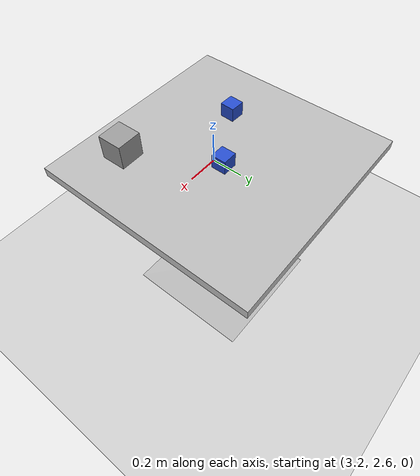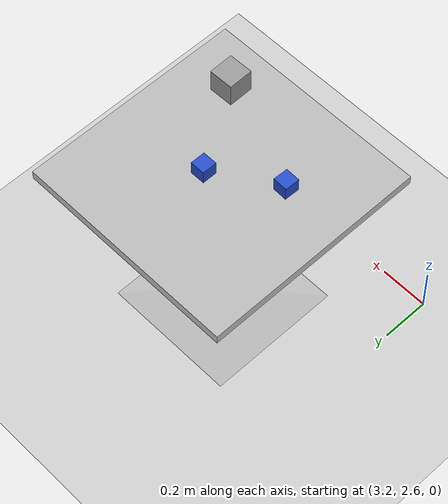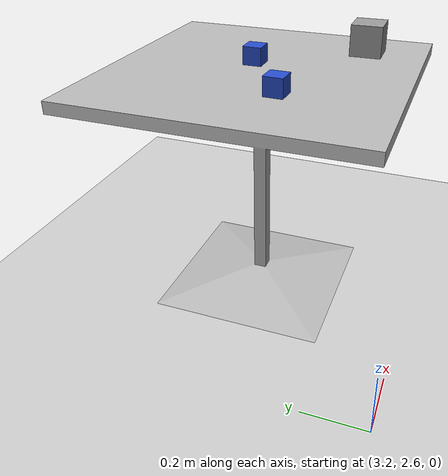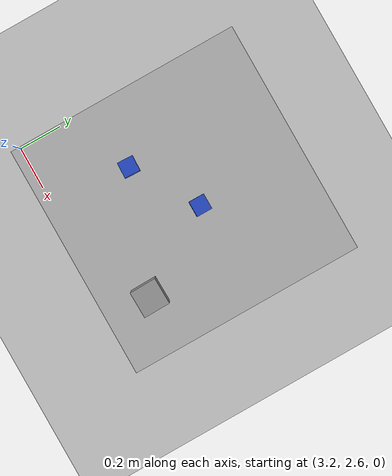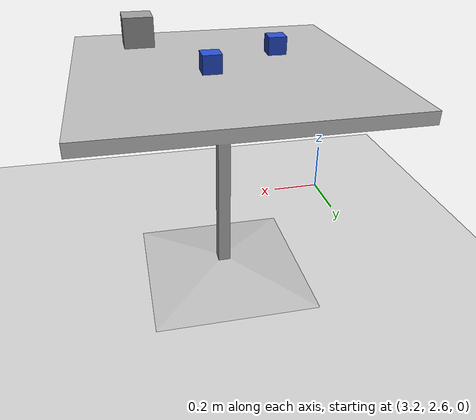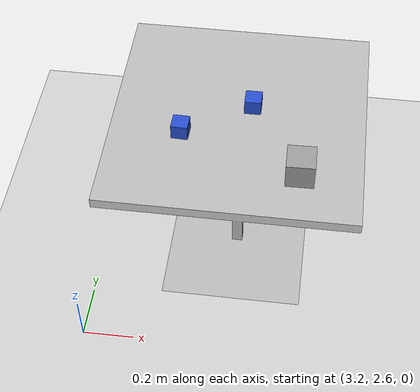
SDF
<sdf version="1.4">
 <world name="default">
  <model name="ground_plane">
   <static>1</static>
   <link name="link">
    <collision name="collision">
     <geometry><plane><normal>0 0 1</normal><size>100 100</size></plane></geometry>
     <surface><friction><ode><mu>100</mu><mu2>50</mu2></ode></friction></surface>
    </collision>
    <visual name="visual">
     <cast_shadows>0</cast_shadows>
     <geometry><plane><normal>0 0 1</normal><size>100 100</size></plane></geometry>
     <material>
      <script><uri>file://media/materials/scripts/gazebo.material</uri><name>Gazebo/Grey</name></script>
     </material>
    </visual>
    <velocity_decay><linear>0</linear><angular>0</angular></velocity_decay>
   </link>
  </model>
  <light name="sun" type="directional">
   <pose>0 0 10 0 -0 0</pose>
   <diffuse>0.8 0.8 0.8 1</diffuse>
   <specular>0.2 0.2 0.2 1</specular>
   <attenuation>
    <range>1000</range>
    <constant>0.9</constant>
    <linear>0.01</linear>
    <quadratic>0.001</quadratic>
   </attenuation>
   <direction>-0.5 0.1 -0.9</direction>
  </light>
  <model name="table1">
   <static>1</static>
   <link name="link">
    <collision name="surface">
     <pose>0 0 0.755 0 -0 0</pose>
     <geometry><box><size>0.913 0.913 0.04</size></box></geometry>
    </collision>
    <collision name="column">
     <pose>0 0 0.37 0 -0 0</pose>
     <geometry><box><size>0.042 0.042 0.74</size></box></geometry>
    </collision>
    <collision name="base">
     <pose>0 0 0.02 0 -0 0</pose>
     <geometry><box><size>0.56 0.56 0.04</size></box></geometry>
    </collision>
    <visual name="visual">
     <geometry><mesh><uri>model://cafe_table/meshes/cafe_table.dae</uri></mesh></geometry>
    </visual>
    <velocity_decay><linear>0</linear><angular>0</angular></velocity_decay>
   </link>
   <pose>3.7542 3.1107 0 0 -0 1.57</pose>
  </model>
  <model name="demo_cube">
   <static>0</static>
   <link name="link">
    <inertial>
     <mass>0.25</mass>
     <inertia><ixx>0.001</ixx><ixy>0</ixy><ixz>0</ixz><iyy>0.001</iyy><iyz>0</iyz><izz>0.001</izz></inertia>
    </inertial>
    <collision name="collision">
     <geometry><box><size>0.06 0.06 0.06</size></box></geometry>
     <surface>
      <friction><ode><mu>30</mu><mu2>30</mu2></ode></friction>
      <contact><ode><kp>1e+06</kp><kd>100</kd><max_vel>1</max_vel><min_depth>0.002</min_depth></ode></contact>
     </surface>
    </collision>
    <visual name="visual">
     <geometry><box><size>0.06 0.06 0.06</size></box></geometry>
     <material>
      <script><uri>file://media/materials/scripts/gazebo.material</uri><name>Gazebo/Blue</name></script>
     </material>
    </visual>
    <velocity_decay><linear>0</linear><angular>0</angular></velocity_decay>
   </link>
   <pose>3.79998 3.15001 0.802999 0 0 -9.5e-05</pose>
  </model>
  <physics type="ode">
   <max_step_size>0.001</max_step_size>
   <real_time_factor>1</real_time_factor>
   <real_time_update_rate>1000</real_time_update_rate>
   <gravity>0 0 -9.8</gravity>
  </physics>
  <scene><ambient>0.4 0.4 0.4 1</ambient><background>0.7 0.7 0.7 1</background><shadows>1</shadows></scene>
  <spherical_coordinates>
   <surface_model>EARTH_WGS84</surface_model>
   <latitude_deg>0</latitude_deg>
   <longitude_deg>0</longitude_deg>
   <elevation>0</elevation>
   <heading_deg>0</heading_deg>
  </spherical_coordinates>
  <model name="demo_cube_0">
   <static>0</static>
   <link name="link">
    <inertial>
     <mass>0.25</mass>
     <inertia><ixx>0.001</ixx><ixy>0</ixy><ixz>0</ixz><iyy>0.001</iyy><iyz>0</iyz><izz>0.001</izz></inertia>
    </inertial>
    <collision name="collision">
     <geometry><box><size>0.06 0.06 0.06</size></box></geometry>
     <surface>
      <friction><ode><mu>30</mu><mu2>30</mu2></ode></friction>
      <contact><ode><kp>1e+06</kp><kd>100</kd><max_vel>1</max_vel><min_depth>0.002</min_depth></ode></contact>
     </surface>
    </collision>
    <visual name="visual">
     <geometry><box><size>0.06 0.06 0.06</size></box></geometry>
     <material>
      <script><uri>file://media/materials/scripts/gazebo.material</uri><name>Gazebo/Blue</name></script>
     </material>
    </visual>
    <velocity_decay><linear>0</linear><angular>0</angular></velocity_decay>
   </link>
   <pose>3.55602 2.99672 0.802999 0 -0 -0.034272</pose>
  </model>
  <model name="unit_box_1">
   <pose>3.99226 2.83596 0.833419 0 -0 0.018515</pose>
   <link name="link">
    <inertial>
     <mass>1</mass>
     <inertia><ixx>1</ixx><ixy>0</ixy><ixz>0</ixz><iyy>1</iyy><iyz>0</iyz><izz>1</izz></inertia>
    </inertial>
    <collision name="collision">
     <geometry><box><size>0.348007 0.145897 0.116839</size></box></geometry>
    </collision>
    <visual name="visual">
     <geometry><box><size>0.1 0.1 0.1</size></box></geometry>
     <material>
      <script><uri>file://media/materials/scripts/gazebo.material</uri><name>Gazebo/Grey</name></script>
     </material>
    </visual>
    <velocity_decay><linear>0</linear><angular>0</angular></velocity_decay>
   </link>
   <static>0</static>
  </model>
 </world>
</sdf>
